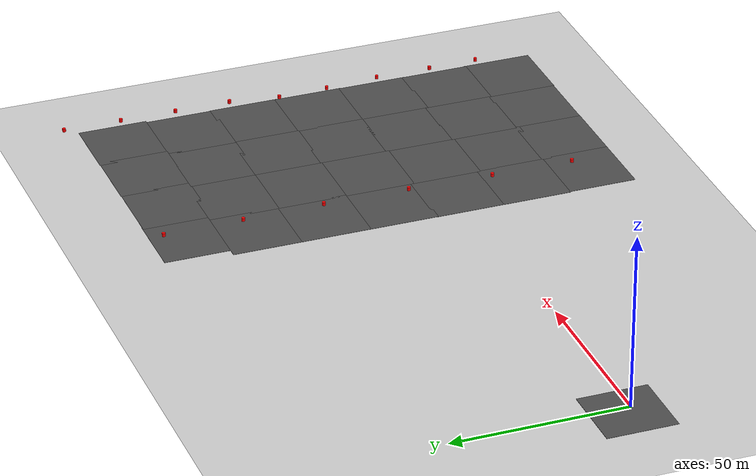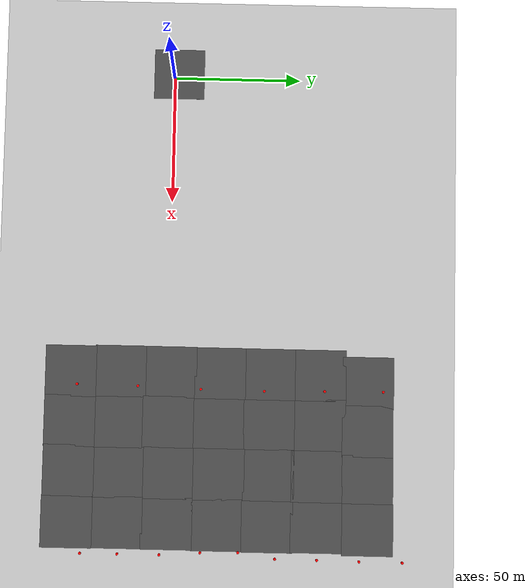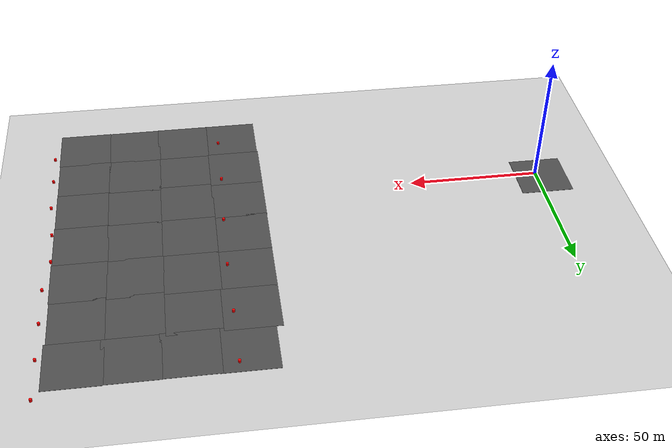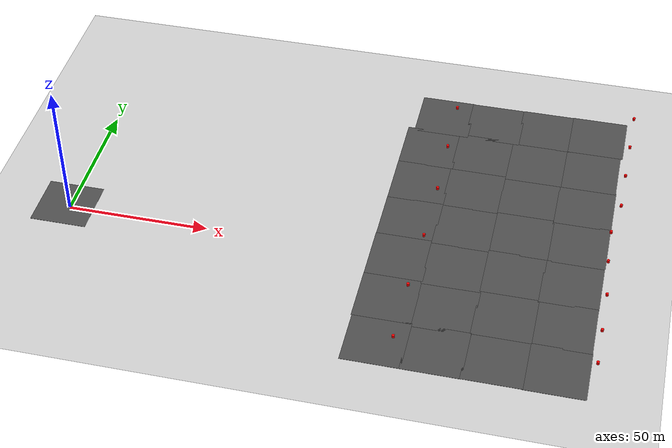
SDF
<sdf version="1.6">
 <world name="default">
  <model name="ground_plane">
   <static>1</static>
   <link name="link">
    <collision name="collision">
     <geometry><plane><normal>0 0 1</normal><size>100 100</size></plane></geometry>
     <surface>
      <contact><collide_bitmask>65535</collide_bitmask></contact>
      <friction><ode><mu>100</mu><mu2>50</mu2></ode></friction>
     </surface>
    </collision>
    <visual name="visual">
     <cast_shadows>0</cast_shadows>
     <geometry><plane><normal>0 0 1</normal><size>100 100</size></plane></geometry>
     <material>
      <script><uri>file://media/materials/scripts/gazebo.material</uri><name>Gazebo/Grey</name></script>
     </material>
    </visual>
   </link>
  </model>
  <model name="asphalt_plane">
   <static>1</static>
   <link name="link">
    <collision name="collision"><geometry><box><size>20 20 0.1</size></box></geometry></collision>
    <visual name="visual">
     <cast_shadows>0</cast_shadows>
     <geometry><box><size>20 20 0.1</size></box></geometry>
     <material>
      <script>
       <uri>model://asphalt_plane/materials/scripts</uri>
       <uri>model://asphalt_plane/materials/textures</uri>
       <name>vrc/asphalt</name>
      </script>
     </material>
    </visual>
   </link>
   <pose>-1.68563 1.69754 0 0 -0 0</pose>
  </model>
  <model name="asphalt_plane_47">
   <static>1</static>
   <link name="link">
    <collision name="collision"><geometry><box><size>20 20 0.1</size></box></geometry></collision>
    <visual name="visual">
     <cast_shadows>0</cast_shadows>
     <geometry><box><size>20 20 0.1</size></box></geometry>
     <material>
      <script>
       <uri>model://asphalt_plane/materials/scripts</uri>
       <uri>model://asphalt_plane/materials/textures</uri>
       <name>vrc/asphalt</name>
      </script>
     </material>
    </visual>
   </link>
   <pose>117.725 -38.1173 0 0 -0 0</pose>
  </model>
  <model name="asphalt_plane_48">
   <static>1</static>
   <link name="link">
    <collision name="collision"><geometry><box><size>20 20 0.1</size></box></geometry></collision>
    <visual name="visual">
     <cast_shadows>0</cast_shadows>
     <geometry><box><size>20 20 0.1</size></box></geometry>
     <material>
      <script>
       <uri>model://asphalt_plane/materials/scripts</uri>
       <uri>model://asphalt_plane/materials/textures</uri>
       <name>vrc/asphalt</name>
      </script>
     </material>
    </visual>
   </link>
   <pose>117.418 -18.5588 0 0 -0 0</pose>
  </model>
  <model name="asphalt_plane_49">
   <static>1</static>
   <link name="link">
    <collision name="collision"><geometry><box><size>20 20 0.1</size></box></geometry></collision>
    <visual name="visual">
     <cast_shadows>0</cast_shadows>
     <geometry><box><size>20 20 0.1</size></box></geometry>
     <material>
      <script>
       <uri>model://asphalt_plane/materials/scripts</uri>
       <uri>model://asphalt_plane/materials/textures</uri>
       <name>vrc/asphalt</name>
      </script>
     </material>
    </visual>
   </link>
   <pose>117.461 1.3262 0 0 -0 0</pose>
  </model>
  <model name="asphalt_plane_50">
   <static>1</static>
   <link name="link">
    <collision name="collision"><geometry><box><size>20 20 0.1</size></box></geometry></collision>
    <visual name="visual">
     <cast_shadows>0</cast_shadows>
     <geometry><box><size>20 20 0.1</size></box></geometry>
     <material>
      <script>
       <uri>model://asphalt_plane/materials/scripts</uri>
       <uri>model://asphalt_plane/materials/textures</uri>
       <name>vrc/asphalt</name>
      </script>
     </material>
    </visual>
   </link>
   <pose>117.561 20.5883 0 0 -0 0</pose>
  </model>
  <model name="asphalt_plane_51">
   <static>1</static>
   <link name="link">
    <collision name="collision"><geometry><box><size>20 20 0.1</size></box></geometry></collision>
    <visual name="visual">
     <cast_shadows>0</cast_shadows>
     <geometry><box><size>20 20 0.1</size></box></geometry>
     <material>
      <script>
       <uri>model://asphalt_plane/materials/scripts</uri>
       <uri>model://asphalt_plane/materials/textures</uri>
       <name>vrc/asphalt</name>
      </script>
     </material>
    </visual>
   </link>
   <pose>117.597 40.3072 0 0 -0 0</pose>
  </model>
  <model name="asphalt_plane_52">
   <static>1</static>
   <link name="link">
    <collision name="collision"><geometry><box><size>20 20 0.1</size></box></geometry></collision>
    <visual name="visual">
     <cast_shadows>0</cast_shadows>
     <geometry><box><size>20 20 0.1</size></box></geometry>
     <material>
      <script>
       <uri>model://asphalt_plane/materials/scripts</uri>
       <uri>model://asphalt_plane/materials/textures</uri>
       <name>vrc/asphalt</name>
      </script>
     </material>
    </visual>
   </link>
   <pose>117.611 60.0083 0 0 -0 0</pose>
  </model>
  <model name="asphalt_plane_53">
   <static>1</static>
   <link name="link">
    <collision name="collision"><geometry><box><size>20 20 0.1</size></box></geometry></collision>
    <visual name="visual">
     <cast_shadows>0</cast_shadows>
     <geometry><box><size>20 20 0.1</size></box></geometry>
     <material>
      <script>
       <uri>model://asphalt_plane/materials/scripts</uri>
       <uri>model://asphalt_plane/materials/textures</uri>
       <name>vrc/asphalt</name>
      </script>
     </material>
    </visual>
   </link>
   <pose>136.964 59.9939 0 0 -0 0</pose>
  </model>
  <model name="asphalt_plane_54">
   <static>1</static>
   <link name="link">
    <collision name="collision"><geometry><box><size>20 20 0.1</size></box></geometry></collision>
    <visual name="visual">
     <cast_shadows>0</cast_shadows>
     <geometry><box><size>20 20 0.1</size></box></geometry>
     <material>
      <script>
       <uri>model://asphalt_plane/materials/scripts</uri>
       <uri>model://asphalt_plane/materials/textures</uri>
       <name>vrc/asphalt</name>
      </script>
     </material>
    </visual>
   </link>
   <pose>136.97 40.0461 0 0 -0 0</pose>
  </model>
  <model name="asphalt_plane_55">
   <static>1</static>
   <link name="link">
    <collision name="collision"><geometry><box><size>20 20 0.1</size></box></geometry></collision>
    <visual name="visual">
     <cast_shadows>0</cast_shadows>
     <geometry><box><size>20 20 0.1</size></box></geometry>
     <material>
      <script>
       <uri>model://asphalt_plane/materials/scripts</uri>
       <uri>model://asphalt_plane/materials/textures</uri>
       <name>vrc/asphalt</name>
      </script>
     </material>
    </visual>
   </link>
   <pose>136.974 20.2339 0 0 -0 0</pose>
  </model>
  <model name="asphalt_plane_56">
   <static>1</static>
   <link name="link">
    <collision name="collision"><geometry><box><size>20 20 0.1</size></box></geometry></collision>
    <visual name="visual">
     <cast_shadows>0</cast_shadows>
     <geometry><box><size>20 20 0.1</size></box></geometry>
     <material>
      <script>
       <uri>model://asphalt_plane/materials/scripts</uri>
       <uri>model://asphalt_plane/materials/textures</uri>
       <name>vrc/asphalt</name>
      </script>
     </material>
    </visual>
   </link>
   <pose>136.959 0.447684 0 0 -0 0</pose>
  </model>
  <model name="asphalt_plane_57">
   <static>1</static>
   <link name="link">
    <collision name="collision"><geometry><box><size>20 20 0.1</size></box></geometry></collision>
    <visual name="visual">
     <cast_shadows>0</cast_shadows>
     <geometry><box><size>20 20 0.1</size></box></geometry>
     <material>
      <script>
       <uri>model://asphalt_plane/materials/scripts</uri>
       <uri>model://asphalt_plane/materials/textures</uri>
       <name>vrc/asphalt</name>
      </script>
     </material>
    </visual>
   </link>
   <pose>137.26 -19.4886 0 0 -0 0</pose>
  </model>
  <model name="asphalt_plane_58">
   <static>1</static>
   <link name="link">
    <collision name="collision"><geometry><box><size>20 20 0.1</size></box></geometry></collision>
    <visual name="visual">
     <cast_shadows>0</cast_shadows>
     <geometry><box><size>20 20 0.1</size></box></geometry>
     <material>
      <script>
       <uri>model://asphalt_plane/materials/scripts</uri>
       <uri>model://asphalt_plane/materials/textures</uri>
       <name>vrc/asphalt</name>
      </script>
     </material>
    </visual>
   </link>
   <pose>137.149 -38.126 0 0 -0 0</pose>
  </model>
  <model name="asphalt_plane_59">
   <static>1</static>
   <link name="link">
    <collision name="collision"><geometry><box><size>20 20 0.1</size></box></geometry></collision>
    <visual name="visual">
     <cast_shadows>0</cast_shadows>
     <geometry><box><size>20 20 0.1</size></box></geometry>
     <material>
      <script>
       <uri>model://asphalt_plane/materials/scripts</uri>
       <uri>model://asphalt_plane/materials/textures</uri>
       <name>vrc/asphalt</name>
      </script>
     </material>
    </visual>
   </link>
   <pose>156.487 -38.0347 0 0 -0 0</pose>
  </model>
  <model name="asphalt_plane_60">
   <static>1</static>
   <link name="link">
    <collision name="collision"><geometry><box><size>20 20 0.1</size></box></geometry></collision>
    <visual name="visual">
     <cast_shadows>0</cast_shadows>
     <geometry><box><size>20 20 0.1</size></box></geometry>
     <material>
      <script>
       <uri>model://asphalt_plane/materials/scripts</uri>
       <uri>model://asphalt_plane/materials/textures</uri>
       <name>vrc/asphalt</name>
      </script>
     </material>
    </visual>
   </link>
   <pose>156.663 -18.4522 0 0 -0 0</pose>
  </model>
  <model name="asphalt_plane_61">
   <static>1</static>
   <link name="link">
    <collision name="collision"><geometry><box><size>20 20 0.1</size></box></geometry></collision>
    <visual name="visual">
     <cast_shadows>0</cast_shadows>
     <geometry><box><size>20 20 0.1</size></box></geometry>
     <material>
      <script>
       <uri>model://asphalt_plane/materials/scripts</uri>
       <uri>model://asphalt_plane/materials/textures</uri>
       <name>vrc/asphalt</name>
      </script>
     </material>
    </visual>
   </link>
   <pose>156.766 1.17903 0 0 -0 0</pose>
  </model>
  <model name="asphalt_plane_62">
   <static>1</static>
   <link name="link">
    <collision name="collision"><geometry><box><size>20 20 0.1</size></box></geometry></collision>
    <visual name="visual">
     <cast_shadows>0</cast_shadows>
     <geometry><box><size>20 20 0.1</size></box></geometry>
     <material>
      <script>
       <uri>model://asphalt_plane/materials/scripts</uri>
       <uri>model://asphalt_plane/materials/textures</uri>
       <name>vrc/asphalt</name>
      </script>
     </material>
    </visual>
   </link>
   <pose>156.898 20.6474 0 0 -0 0</pose>
  </model>
  <model name="asphalt_plane_63">
   <static>1</static>
   <link name="link">
    <collision name="collision"><geometry><box><size>20 20 0.1</size></box></geometry></collision>
    <visual name="visual">
     <cast_shadows>0</cast_shadows>
     <geometry><box><size>20 20 0.1</size></box></geometry>
     <material>
      <script>
       <uri>model://asphalt_plane/materials/scripts</uri>
       <uri>model://asphalt_plane/materials/textures</uri>
       <name>vrc/asphalt</name>
      </script>
     </material>
    </visual>
   </link>
   <pose>156.775 40.0286 0 0 -0 0</pose>
  </model>
  <model name="asphalt_plane_64">
   <static>1</static>
   <link name="link">
    <collision name="collision"><geometry><box><size>20 20 0.1</size></box></geometry></collision>
    <visual name="visual">
     <cast_shadows>0</cast_shadows>
     <geometry><box><size>20 20 0.1</size></box></geometry>
     <material>
      <script>
       <uri>model://asphalt_plane/materials/scripts</uri>
       <uri>model://asphalt_plane/materials/textures</uri>
       <name>vrc/asphalt</name>
      </script>
     </material>
    </visual>
   </link>
   <pose>156.941 58.8997 0 0 -0 0</pose>
  </model>
  <model name="asphalt_plane_65">
   <static>1</static>
   <link name="link">
    <collision name="collision"><geometry><box><size>20 20 0.1</size></box></geometry></collision>
    <visual name="visual">
     <cast_shadows>0</cast_shadows>
     <geometry><box><size>20 20 0.1</size></box></geometry>
     <material>
      <script>
       <uri>model://asphalt_plane/materials/scripts</uri>
       <uri>model://asphalt_plane/materials/textures</uri>
       <name>vrc/asphalt</name>
      </script>
     </material>
    </visual>
   </link>
   <pose>176.35 -38.1595 0 0 -0 0</pose>
  </model>
  <model name="asphalt_plane_66">
   <static>1</static>
   <link name="link">
    <collision name="collision"><geometry><box><size>20 20 0.1</size></box></geometry></collision>
    <visual name="visual">
     <cast_shadows>0</cast_shadows>
     <geometry><box><size>20 20 0.1</size></box></geometry>
     <material>
      <script>
       <uri>model://asphalt_plane/materials/scripts</uri>
       <uri>model://asphalt_plane/materials/textures</uri>
       <name>vrc/asphalt</name>
      </script>
     </material>
    </visual>
   </link>
   <pose>176.208 -18.6943 0 0 -0 0</pose>
  </model>
  <model name="asphalt_plane_67">
   <static>1</static>
   <link name="link">
    <collision name="collision"><geometry><box><size>20 20 0.1</size></box></geometry></collision>
    <visual name="visual">
     <cast_shadows>0</cast_shadows>
     <geometry><box><size>20 20 0.1</size></box></geometry>
     <material>
      <script>
       <uri>model://asphalt_plane/materials/scripts</uri>
       <uri>model://asphalt_plane/materials/textures</uri>
       <name>vrc/asphalt</name>
      </script>
     </material>
    </visual>
   </link>
   <pose>176.281 0.711573 0 0 -0 0</pose>
  </model>
  <model name="asphalt_plane_68">
   <static>1</static>
   <link name="link">
    <collision name="collision"><geometry><box><size>20 20 0.1</size></box></geometry></collision>
    <visual name="visual">
     <cast_shadows>0</cast_shadows>
     <geometry><box><size>20 20 0.1</size></box></geometry>
     <material>
      <script>
       <uri>model://asphalt_plane/materials/scripts</uri>
       <uri>model://asphalt_plane/materials/textures</uri>
       <name>vrc/asphalt</name>
      </script>
     </material>
    </visual>
   </link>
   <pose>176.432 20.2894 0 0 -0 0</pose>
  </model>
  <model name="asphalt_plane_69">
   <static>1</static>
   <link name="link">
    <collision name="collision"><geometry><box><size>20 20 0.1</size></box></geometry></collision>
    <visual name="visual">
     <cast_shadows>0</cast_shadows>
     <geometry><box><size>20 20 0.1</size></box></geometry>
     <material>
      <script>
       <uri>model://asphalt_plane/materials/scripts</uri>
       <uri>model://asphalt_plane/materials/textures</uri>
       <name>vrc/asphalt</name>
      </script>
     </material>
    </visual>
   </link>
   <pose>176.575 39.843 0 0 -0 0</pose>
  </model>
  <model name="asphalt_plane_70">
   <static>1</static>
   <link name="link">
    <collision name="collision"><geometry><box><size>20 20 0.1</size></box></geometry></collision>
    <visual name="visual">
     <cast_shadows>0</cast_shadows>
     <geometry><box><size>20 20 0.1</size></box></geometry>
     <material>
      <script>
       <uri>model://asphalt_plane/materials/scripts</uri>
       <uri>model://asphalt_plane/materials/textures</uri>
       <name>vrc/asphalt</name>
      </script>
     </material>
    </visual>
   </link>
   <pose>176.383 58.9088 0 0 -0 0</pose>
  </model>
  <model name="asphalt_plane_78">
   <static>1</static>
   <link name="link">
    <collision name="collision"><geometry><box><size>20 20 0.1</size></box></geometry></collision>
    <visual name="visual">
     <cast_shadows>0</cast_shadows>
     <geometry><box><size>20 20 0.1</size></box></geometry>
     <material>
      <script>
       <uri>model://asphalt_plane/materials/scripts</uri>
       <uri>model://asphalt_plane/materials/textures</uri>
       <name>vrc/asphalt</name>
      </script>
     </material>
    </visual>
   </link>
   <pose>177.069 78.9065 0 0 -0 0</pose>
  </model>
  <model name="asphalt_plane_79">
   <static>1</static>
   <link name="link">
    <collision name="collision"><geometry><box><size>20 20 0.1</size></box></geometry></collision>
    <visual name="visual">
     <cast_shadows>0</cast_shadows>
     <geometry><box><size>20 20 0.1</size></box></geometry>
     <material>
      <script>
       <uri>model://asphalt_plane/materials/scripts</uri>
       <uri>model://asphalt_plane/materials/textures</uri>
       <name>vrc/asphalt</name>
      </script>
     </material>
    </visual>
   </link>
   <pose>158.334 78.7447 0 0 -0 0</pose>
  </model>
  <model name="asphalt_plane_80">
   <static>1</static>
   <link name="link">
    <collision name="collision"><geometry><box><size>20 20 0.1</size></box></geometry></collision>
    <visual name="visual">
     <cast_shadows>0</cast_shadows>
     <geometry><box><size>20 20 0.1</size></box></geometry>
     <material>
      <script>
       <uri>model://asphalt_plane/materials/scripts</uri>
       <uri>model://asphalt_plane/materials/textures</uri>
       <name>vrc/asphalt</name>
      </script>
     </material>
    </visual>
   </link>
   <pose>139.042 78.6211 0 0 -0 0</pose>
  </model>
  <model name="asphalt_plane_81">
   <static>1</static>
   <link name="link">
    <collision name="collision"><geometry><box><size>20 20 0.1</size></box></geometry></collision>
    <visual name="visual">
     <cast_shadows>0</cast_shadows>
     <geometry><box><size>20 20 0.1</size></box></geometry>
     <material>
      <script>
       <uri>model://asphalt_plane/materials/scripts</uri>
       <uri>model://asphalt_plane/materials/textures</uri>
       <name>vrc/asphalt</name>
      </script>
     </material>
    </visual>
   </link>
   <pose>120.04 78.7653 0 0 -0 0</pose>
  </model>
  <model name="station_38">
   <link name="link">
    <inertial>
     <mass>1</mass>
     <inertia><ixx>0.145833</ixx><ixy>0</ixy><ixz>0</ixz><iyy>0.145833</iyy><iyz>0</iyz><izz>0.125</izz></inertia>
    </inertial>
    <visual name="visual">
     <geometry><cylinder><radius>0.5</radius><length>1</length></cylinder></geometry>
     <material>
      <script><name>Gazebo/Grey</name><uri>file://media/materials/scripts/gazebo.material</uri></script>
      <shader type="vertex"><normal_map>__default__</normal_map></shader>
      <ambient>1 0 0 0</ambient>
      <diffuse>0 0 0 1</diffuse>
      <specular>0.91 0.01 0.01 1</specular>
      <emissive>0 0 0 1</emissive>
     </material>
    </visual>
    <collision name="collision">
     <geometry><cylinder><radius>0.5</radius><length>1</length></cylinder></geometry>
     <surface>
      <friction>
       <ode><mu>1</mu><mu2>1</mu2><fdir1>0 0 0</fdir1><slip1>0</slip1><slip2>0</slip2></ode>
       <torsional>
        <coefficient>1</coefficient>
        <patch_radius>0</patch_radius>
        <surface_radius>0</surface_radius>
        <use_patch_radius>1</use_patch_radius>
        <ode><slip>0</slip></ode>
       </torsional>
      </friction>
      <bounce><restitution_coefficient>0</restitution_coefficient><threshold>1e+06</threshold></bounce>
      <contact>
       <collide_without_contact>0</collide_without_contact>
       <collide_without_contact_bitmask>1</collide_without_contact_bitmask>
       <collide_bitmask>1</collide_bitmask>
       <ode>
        <soft_cfm>0</soft_cfm>
        <soft_erp>0.2</soft_erp>
        <kp>1e+13</kp>
        <kd>1</kd>
        <max_vel>0.01</max_vel>
        <min_depth>0</min_depth>
       </ode>
       <bullet>
        <split_impulse>1</split_impulse>
        <split_impulse_penetration_threshold>-0.01</split_impulse_penetration_threshold>
        <soft_cfm>0</soft_cfm>
        <soft_erp>0.2</soft_erp>
        <kp>1e+13</kp>
        <kd>1</kd>
       </bullet>
      </contact>
     </surface>
    </collision>
   </link>
   <static>1</static>
   <pose>189.238 92.5139 0.619557 0 -0 0</pose>
  </model>
  <model name="station_39">
   <link name="link">
    <inertial>
     <mass>1</mass>
     <inertia><ixx>0.145833</ixx><ixy>0</ixy><ixz>0</ixz><iyy>0.145833</iyy><iyz>0</iyz><izz>0.125</izz></inertia>
    </inertial>
    <visual name="visual">
     <geometry><cylinder><radius>0.5</radius><length>1</length></cylinder></geometry>
     <material>
      <script><name>Gazebo/Grey</name><uri>file://media/materials/scripts/gazebo.material</uri></script>
      <shader type="vertex"><normal_map>__default__</normal_map></shader>
      <ambient>1 0 0 0</ambient>
      <diffuse>0 0 0 1</diffuse>
      <specular>0.91 0.01 0.01 1</specular>
      <emissive>0 0 0 1</emissive>
     </material>
    </visual>
    <collision name="collision">
     <geometry><cylinder><radius>0.5</radius><length>1</length></cylinder></geometry>
     <surface>
      <friction>
       <ode><mu>1</mu><mu2>1</mu2><fdir1>0 0 0</fdir1><slip1>0</slip1><slip2>0</slip2></ode>
       <torsional>
        <coefficient>1</coefficient>
        <patch_radius>0</patch_radius>
        <surface_radius>0</surface_radius>
        <use_patch_radius>1</use_patch_radius>
        <ode><slip>0</slip></ode>
       </torsional>
      </friction>
      <bounce><restitution_coefficient>0</restitution_coefficient><threshold>1e+06</threshold></bounce>
      <contact>
       <collide_without_contact>0</collide_without_contact>
       <collide_without_contact_bitmask>1</collide_without_contact_bitmask>
       <collide_bitmask>1</collide_bitmask>
       <ode>
        <soft_cfm>0</soft_cfm>
        <soft_erp>0.2</soft_erp>
        <kp>1e+13</kp>
        <kd>1</kd>
        <max_vel>0.01</max_vel>
        <min_depth>0</min_depth>
       </ode>
       <bullet>
        <split_impulse>1</split_impulse>
        <split_impulse_penetration_threshold>-0.01</split_impulse_penetration_threshold>
        <soft_cfm>0</soft_cfm>
        <soft_erp>0.2</soft_erp>
        <kp>1e+13</kp>
        <kd>1</kd>
       </bullet>
      </contact>
     </surface>
    </collision>
   </link>
   <static>1</static>
   <pose>189.119 75.7174 0.619557 0 -0 0</pose>
  </model>
  <model name="station_40">
   <link name="link">
    <inertial>
     <mass>1</mass>
     <inertia><ixx>0.145833</ixx><ixy>0</ixy><ixz>0</ixz><iyy>0.145833</iyy><iyz>0</iyz><izz>0.125</izz></inertia>
    </inertial>
    <visual name="visual">
     <geometry><cylinder><radius>0.5</radius><length>1</length></cylinder></geometry>
     <material>
      <script><name>Gazebo/Grey</name><uri>file://media/materials/scripts/gazebo.material</uri></script>
      <shader type="vertex"><normal_map>__default__</normal_map></shader>
      <ambient>1 0 0 0</ambient>
      <diffuse>0 0 0 1</diffuse>
      <specular>0.91 0.01 0.01 1</specular>
      <emissive>0 0 0 1</emissive>
     </material>
    </visual>
    <collision name="collision">
     <geometry><cylinder><radius>0.5</radius><length>1</length></cylinder></geometry>
     <surface>
      <friction>
       <ode><mu>1</mu><mu2>1</mu2><fdir1>0 0 0</fdir1><slip1>0</slip1><slip2>0</slip2></ode>
       <torsional>
        <coefficient>1</coefficient>
        <patch_radius>0</patch_radius>
        <surface_radius>0</surface_radius>
        <use_patch_radius>1</use_patch_radius>
        <ode><slip>0</slip></ode>
       </torsional>
      </friction>
      <bounce><restitution_coefficient>0</restitution_coefficient><threshold>1e+06</threshold></bounce>
      <contact>
       <collide_without_contact>0</collide_without_contact>
       <collide_without_contact_bitmask>1</collide_without_contact_bitmask>
       <collide_bitmask>1</collide_bitmask>
       <ode>
        <soft_cfm>0</soft_cfm>
        <soft_erp>0.2</soft_erp>
        <kp>1e+13</kp>
        <kd>1</kd>
        <max_vel>0.01</max_vel>
        <min_depth>0</min_depth>
       </ode>
       <bullet>
        <split_impulse>1</split_impulse>
        <split_impulse_penetration_threshold>-0.01</split_impulse_penetration_threshold>
        <soft_cfm>0</soft_cfm>
        <soft_erp>0.2</soft_erp>
        <kp>1e+13</kp>
        <kd>1</kd>
       </bullet>
      </contact>
     </surface>
    </collision>
   </link>
   <static>1</static>
   <pose>188.919 59.3944 0.619557 0 -0 0</pose>
  </model>
  <model name="station_41">
   <link name="link">
    <inertial>
     <mass>1</mass>
     <inertia><ixx>0.145833</ixx><ixy>0</ixy><ixz>0</ixz><iyy>0.145833</iyy><iyz>0</iyz><izz>0.125</izz></inertia>
    </inertial>
    <visual name="visual">
     <geometry><cylinder><radius>0.5</radius><length>1</length></cylinder></geometry>
     <material>
      <script><name>Gazebo/Grey</name><uri>file://media/materials/scripts/gazebo.material</uri></script>
      <shader type="vertex"><normal_map>__default__</normal_map></shader>
      <ambient>1 0 0 0</ambient>
      <diffuse>0 0 0 1</diffuse>
      <specular>0.91 0.01 0.01 1</specular>
      <emissive>0 0 0 1</emissive>
     </material>
    </visual>
    <collision name="collision">
     <geometry><cylinder><radius>0.5</radius><length>1</length></cylinder></geometry>
     <surface>
      <friction>
       <ode><mu>1</mu><mu2>1</mu2><fdir1>0 0 0</fdir1><slip1>0</slip1><slip2>0</slip2></ode>
       <torsional>
        <coefficient>1</coefficient>
        <patch_radius>0</patch_radius>
        <surface_radius>0</surface_radius>
        <use_patch_radius>1</use_patch_radius>
        <ode><slip>0</slip></ode>
       </torsional>
      </friction>
      <bounce><restitution_coefficient>0</restitution_coefficient><threshold>1e+06</threshold></bounce>
      <contact>
       <collide_without_contact>0</collide_without_contact>
       <collide_without_contact_bitmask>1</collide_without_contact_bitmask>
       <collide_bitmask>1</collide_bitmask>
       <ode>
        <soft_cfm>0</soft_cfm>
        <soft_erp>0.2</soft_erp>
        <kp>1e+13</kp>
        <kd>1</kd>
        <max_vel>0.01</max_vel>
        <min_depth>0</min_depth>
       </ode>
       <bullet>
        <split_impulse>1</split_impulse>
        <split_impulse_penetration_threshold>-0.01</split_impulse_penetration_threshold>
        <soft_cfm>0</soft_cfm>
        <soft_erp>0.2</soft_erp>
        <kp>1e+13</kp>
        <kd>1</kd>
       </bullet>
      </contact>
     </surface>
    </collision>
   </link>
   <static>1</static>
   <pose>188.855 43.1331 0.619557 0 -0 0</pose>
  </model>
  <model name="station_42">
   <link name="link">
    <inertial>
     <mass>1</mass>
     <inertia><ixx>0.145833</ixx><ixy>0</ixy><ixz>0</ixz><iyy>0.145833</iyy><iyz>0</iyz><izz>0.125</izz></inertia>
    </inertial>
    <visual name="visual">
     <geometry><cylinder><radius>0.5</radius><length>1</length></cylinder></geometry>
     <material>
      <script><name>Gazebo/Grey</name><uri>file://media/materials/scripts/gazebo.material</uri></script>
      <shader type="vertex"><normal_map>__default__</normal_map></shader>
      <ambient>1 0 0 0</ambient>
      <diffuse>0 0 0 1</diffuse>
      <specular>0.91 0.01 0.01 1</specular>
      <emissive>0 0 0 1</emissive>
     </material>
    </visual>
    <collision name="collision">
     <geometry><cylinder><radius>0.5</radius><length>1</length></cylinder></geometry>
     <surface>
      <friction>
       <ode><mu>1</mu><mu2>1</mu2><fdir1>0 0 0</fdir1><slip1>0</slip1><slip2>0</slip2></ode>
       <torsional>
        <coefficient>1</coefficient>
        <patch_radius>0</patch_radius>
        <surface_radius>0</surface_radius>
        <use_patch_radius>1</use_patch_radius>
        <ode><slip>0</slip></ode>
       </torsional>
      </friction>
      <bounce><restitution_coefficient>0</restitution_coefficient><threshold>1e+06</threshold></bounce>
      <contact>
       <collide_without_contact>0</collide_without_contact>
       <collide_without_contact_bitmask>1</collide_without_contact_bitmask>
       <collide_bitmask>1</collide_bitmask>
       <ode>
        <soft_cfm>0</soft_cfm>
        <soft_erp>0.2</soft_erp>
        <kp>1e+13</kp>
        <kd>1</kd>
        <max_vel>0.01</max_vel>
        <min_depth>0</min_depth>
       </ode>
       <bullet>
        <split_impulse>1</split_impulse>
        <split_impulse_penetration_threshold>-0.01</split_impulse_penetration_threshold>
        <soft_cfm>0</soft_cfm>
        <soft_erp>0.2</soft_erp>
        <kp>1e+13</kp>
        <kd>1</kd>
       </bullet>
      </contact>
     </surface>
    </collision>
   </link>
   <static>1</static>
   <pose>186.632 28.8057 0.619557 0 -0 0</pose>
  </model>
  <model name="station_43">
   <link name="link">
    <inertial>
     <mass>1</mass>
     <inertia><ixx>0.145833</ixx><ixy>0</ixy><ixz>0</ixz><iyy>0.145833</iyy><iyz>0</iyz><izz>0.125</izz></inertia>
    </inertial>
    <visual name="visual">
     <geometry><cylinder><radius>0.5</radius><length>1</length></cylinder></geometry>
     <material>
      <script><name>Gazebo/Grey</name><uri>file://media/materials/scripts/gazebo.material</uri></script>
      <shader type="vertex"><normal_map>__default__</normal_map></shader>
      <ambient>1 0 0 0</ambient>
      <diffuse>0 0 0 1</diffuse>
      <specular>0.91 0.01 0.01 1</specular>
      <emissive>0 0 0 1</emissive>
     </material>
    </visual>
    <collision name="collision">
     <geometry><cylinder><radius>0.5</radius><length>1</length></cylinder></geometry>
     <surface>
      <friction>
       <ode><mu>1</mu><mu2>1</mu2><fdir1>0 0 0</fdir1><slip1>0</slip1><slip2>0</slip2></ode>
       <torsional>
        <coefficient>1</coefficient>
        <patch_radius>0</patch_radius>
        <surface_radius>0</surface_radius>
        <use_patch_radius>1</use_patch_radius>
        <ode><slip>0</slip></ode>
       </torsional>
      </friction>
      <bounce><restitution_coefficient>0</restitution_coefficient><threshold>1e+06</threshold></bounce>
      <contact>
       <collide_without_contact>0</collide_without_contact>
       <collide_without_contact_bitmask>1</collide_without_contact_bitmask>
       <collide_bitmask>1</collide_bitmask>
       <ode>
        <soft_cfm>0</soft_cfm>
        <soft_erp>0.2</soft_erp>
        <kp>1e+13</kp>
        <kd>1</kd>
        <max_vel>0.01</max_vel>
        <min_depth>0</min_depth>
       </ode>
       <bullet>
        <split_impulse>1</split_impulse>
        <split_impulse_penetration_threshold>-0.01</split_impulse_penetration_threshold>
        <soft_cfm>0</soft_cfm>
        <soft_erp>0.2</soft_erp>
        <kp>1e+13</kp>
        <kd>1</kd>
       </bullet>
      </contact>
     </surface>
    </collision>
   </link>
   <static>1</static>
   <pose>187.024 14.1659 0.619557 0 -0 0</pose>
  </model>
  <model name="station_44">
   <link name="link">
    <inertial>
     <mass>1</mass>
     <inertia><ixx>0.145833</ixx><ixy>0</ixy><ixz>0</ixz><iyy>0.145833</iyy><iyz>0</iyz><izz>0.125</izz></inertia>
    </inertial>
    <visual name="visual">
     <geometry><cylinder><radius>0.5</radius><length>1</length></cylinder></geometry>
     <material>
      <script><name>Gazebo/Grey</name><uri>file://media/materials/scripts/gazebo.material</uri></script>
      <shader type="vertex"><normal_map>__default__</normal_map></shader>
      <ambient>1 0 0 0</ambient>
      <diffuse>0 0 0 1</diffuse>
      <specular>0.91 0.01 0.01 1</specular>
      <emissive>0 0 0 1</emissive>
     </material>
    </visual>
    <collision name="collision">
     <geometry><cylinder><radius>0.5</radius><length>1</length></cylinder></geometry>
     <surface>
      <friction>
       <ode><mu>1</mu><mu2>1</mu2><fdir1>0 0 0</fdir1><slip1>0</slip1><slip2>0</slip2></ode>
       <torsional>
        <coefficient>1</coefficient>
        <patch_radius>0</patch_radius>
        <surface_radius>0</surface_radius>
        <use_patch_radius>1</use_patch_radius>
        <ode><slip>0</slip></ode>
       </torsional>
      </friction>
      <bounce><restitution_coefficient>0</restitution_coefficient><threshold>1e+06</threshold></bounce>
      <contact>
       <collide_without_contact>0</collide_without_contact>
       <collide_without_contact_bitmask>1</collide_without_contact_bitmask>
       <collide_bitmask>1</collide_bitmask>
       <ode>
        <soft_cfm>0</soft_cfm>
        <soft_erp>0.2</soft_erp>
        <kp>1e+13</kp>
        <kd>1</kd>
        <max_vel>0.01</max_vel>
        <min_depth>0</min_depth>
       </ode>
       <bullet>
        <split_impulse>1</split_impulse>
        <split_impulse_penetration_threshold>-0.01</split_impulse_penetration_threshold>
        <soft_cfm>0</soft_cfm>
        <soft_erp>0.2</soft_erp>
        <kp>1e+13</kp>
        <kd>1</kd>
       </bullet>
      </contact>
     </surface>
    </collision>
   </link>
   <static>1</static>
   <pose>188.125 -1.63657 0.619557 0 -0 0</pose>
  </model>
  <model name="station_45">
   <link name="link">
    <inertial>
     <mass>1</mass>
     <inertia><ixx>0.145833</ixx><ixy>0</ixy><ixz>0</ixz><iyy>0.145833</iyy><iyz>0</iyz><izz>0.125</izz></inertia>
    </inertial>
    <visual name="visual">
     <geometry><cylinder><radius>0.5</radius><length>1</length></cylinder></geometry>
     <material>
      <script><name>Gazebo/Grey</name><uri>file://media/materials/scripts/gazebo.material</uri></script>
      <shader type="vertex"><normal_map>__default__</normal_map></shader>
      <ambient>1 0 0 0</ambient>
      <diffuse>0 0 0 1</diffuse>
      <specular>0.91 0.01 0.01 1</specular>
      <emissive>0 0 0 1</emissive>
     </material>
    </visual>
    <collision name="collision">
     <geometry><cylinder><radius>0.5</radius><length>1</length></cylinder></geometry>
     <surface>
      <friction>
       <ode><mu>1</mu><mu2>1</mu2><fdir1>0 0 0</fdir1><slip1>0</slip1><slip2>0</slip2></ode>
       <torsional>
        <coefficient>1</coefficient>
        <patch_radius>0</patch_radius>
        <surface_radius>0</surface_radius>
        <use_patch_radius>1</use_patch_radius>
        <ode><slip>0</slip></ode>
       </torsional>
      </friction>
      <bounce><restitution_coefficient>0</restitution_coefficient><threshold>1e+06</threshold></bounce>
      <contact>
       <collide_without_contact>0</collide_without_contact>
       <collide_without_contact_bitmask>1</collide_without_contact_bitmask>
       <collide_bitmask>1</collide_bitmask>
       <ode>
        <soft_cfm>0</soft_cfm>
        <soft_erp>0.2</soft_erp>
        <kp>1e+13</kp>
        <kd>1</kd>
        <max_vel>0.01</max_vel>
        <min_depth>0</min_depth>
       </ode>
       <bullet>
        <split_impulse>1</split_impulse>
        <split_impulse_penetration_threshold>-0.01</split_impulse_penetration_threshold>
        <soft_cfm>0</soft_cfm>
        <soft_erp>0.2</soft_erp>
        <kp>1e+13</kp>
        <kd>1</kd>
       </bullet>
      </contact>
     </surface>
    </collision>
   </link>
   <static>1</static>
   <pose>188.131 -17.9624 0.619557 0 -0 0</pose>
  </model>
  <model name="station_46">
   <link name="link">
    <inertial>
     <mass>1</mass>
     <inertia><ixx>0.145833</ixx><ixy>0</ixy><ixz>0</ixz><iyy>0.145833</iyy><iyz>0</iyz><izz>0.125</izz></inertia>
    </inertial>
    <visual name="visual">
     <geometry><cylinder><radius>0.5</radius><length>1</length></cylinder></geometry>
     <material>
      <script><name>Gazebo/Grey</name><uri>file://media/materials/scripts/gazebo.material</uri></script>
      <shader type="vertex"><normal_map>__default__</normal_map></shader>
      <ambient>1 0 0 0</ambient>
      <diffuse>0 0 0 1</diffuse>
      <specular>0.91 0.01 0.01 1</specular>
      <emissive>0 0 0 1</emissive>
     </material>
    </visual>
    <collision name="collision">
     <geometry><cylinder><radius>0.5</radius><length>1</length></cylinder></geometry>
     <surface>
      <friction>
       <ode><mu>1</mu><mu2>1</mu2><fdir1>0 0 0</fdir1><slip1>0</slip1><slip2>0</slip2></ode>
       <torsional>
        <coefficient>1</coefficient>
        <patch_radius>0</patch_radius>
        <surface_radius>0</surface_radius>
        <use_patch_radius>1</use_patch_radius>
        <ode><slip>0</slip></ode>
       </torsional>
      </friction>
      <bounce><restitution_coefficient>0</restitution_coefficient><threshold>1e+06</threshold></bounce>
      <contact>
       <collide_without_contact>0</collide_without_contact>
       <collide_without_contact_bitmask>1</collide_without_contact_bitmask>
       <collide_bitmask>1</collide_bitmask>
       <ode>
        <soft_cfm>0</soft_cfm>
        <soft_erp>0.2</soft_erp>
        <kp>1e+13</kp>
        <kd>1</kd>
        <max_vel>0.01</max_vel>
        <min_depth>0</min_depth>
       </ode>
       <bullet>
        <split_impulse>1</split_impulse>
        <split_impulse_penetration_threshold>-0.01</split_impulse_penetration_threshold>
        <soft_cfm>0</soft_cfm>
        <soft_erp>0.2</soft_erp>
        <kp>1e+13</kp>
        <kd>1</kd>
       </bullet>
      </contact>
     </surface>
    </collision>
   </link>
   <static>1</static>
   <pose>188.197 -32.3567 0.619557 0 -0 0</pose>
  </model>
  <model name="station_55">
   <link name="link">
    <inertial>
     <mass>1</mass>
     <inertia><ixx>0.145833</ixx><ixy>0</ixy><ixz>0</ixz><iyy>0.145833</iyy><iyz>0</iyz><izz>0.125</izz></inertia>
    </inertial>
    <visual name="visual">
     <geometry><cylinder><radius>0.5</radius><length>1</length></cylinder></geometry>
     <material>
      <script><name>Gazebo/Grey</name><uri>file://media/materials/scripts/gazebo.material</uri></script>
      <shader type="vertex"><normal_map>__default__</normal_map></shader>
      <ambient>1 0 0 0</ambient>
      <diffuse>0 0 0 1</diffuse>
      <specular>0.91 0.01 0.01 1</specular>
      <emissive>0 0 0 1</emissive>
     </material>
    </visual>
    <collision name="collision">
     <geometry><cylinder><radius>0.5</radius><length>1</length></cylinder></geometry>
     <surface>
      <friction>
       <ode><mu>1</mu><mu2>1</mu2><fdir1>0 0 0</fdir1><slip1>0</slip1><slip2>0</slip2></ode>
       <torsional>
        <coefficient>1</coefficient>
        <patch_radius>0</patch_radius>
        <surface_radius>0</surface_radius>
        <use_patch_radius>1</use_patch_radius>
        <ode><slip>0</slip></ode>
       </torsional>
      </friction>
      <bounce><restitution_coefficient>0</restitution_coefficient><threshold>1e+06</threshold></bounce>
      <contact>
       <collide_without_contact>0</collide_without_contact>
       <collide_without_contact_bitmask>1</collide_without_contact_bitmask>
       <collide_bitmask>1</collide_bitmask>
       <ode>
        <soft_cfm>0</soft_cfm>
        <soft_erp>0.2</soft_erp>
        <kp>1e+13</kp>
        <kd>1</kd>
        <max_vel>0.01</max_vel>
        <min_depth>0</min_depth>
       </ode>
       <bullet>
        <split_impulse>1</split_impulse>
        <split_impulse_penetration_threshold>-0.01</split_impulse_penetration_threshold>
        <soft_cfm>0</soft_cfm>
        <soft_erp>0.2</soft_erp>
        <kp>1e+13</kp>
        <kd>1</kd>
       </bullet>
      </contact>
     </surface>
    </collision>
   </link>
   <static>1</static>
   <pose>123.53 84.547 0.619557 0 -0 0</pose>
  </model>
  <model name="station_56">
   <link name="link">
    <inertial>
     <mass>1</mass>
     <inertia><ixx>0.145833</ixx><ixy>0</ixy><ixz>0</ixz><iyy>0.145833</iyy><iyz>0</iyz><izz>0.125</izz></inertia>
    </inertial>
    <visual name="visual">
     <geometry><cylinder><radius>0.5</radius><length>1</length></cylinder></geometry>
     <material>
      <script><name>Gazebo/Grey</name><uri>file://media/materials/scripts/gazebo.material</uri></script>
      <shader type="vertex"><normal_map>__default__</normal_map></shader>
      <ambient>1 0 0 0</ambient>
      <diffuse>0 0 0 1</diffuse>
      <specular>0.91 0.01 0.01 1</specular>
      <emissive>0 0 0 1</emissive>
     </material>
    </visual>
    <collision name="collision">
     <geometry><cylinder><radius>0.5</radius><length>1</length></cylinder></geometry>
     <surface>
      <friction>
       <ode><mu>1</mu><mu2>1</mu2><fdir1>0 0 0</fdir1><slip1>0</slip1><slip2>0</slip2></ode>
       <torsional>
        <coefficient>1</coefficient>
        <patch_radius>0</patch_radius>
        <surface_radius>0</surface_radius>
        <use_patch_radius>1</use_patch_radius>
        <ode><slip>0</slip></ode>
       </torsional>
      </friction>
      <bounce><restitution_coefficient>0</restitution_coefficient><threshold>1e+06</threshold></bounce>
      <contact>
       <collide_without_contact>0</collide_without_contact>
       <collide_without_contact_bitmask>1</collide_without_contact_bitmask>
       <collide_bitmask>1</collide_bitmask>
       <ode>
        <soft_cfm>0</soft_cfm>
        <soft_erp>0.2</soft_erp>
        <kp>1e+13</kp>
        <kd>1</kd>
        <max_vel>0.01</max_vel>
        <min_depth>0</min_depth>
       </ode>
       <bullet>
        <split_impulse>1</split_impulse>
        <split_impulse_penetration_threshold>-0.01</split_impulse_penetration_threshold>
        <soft_cfm>0</soft_cfm>
        <soft_erp>0.2</soft_erp>
        <kp>1e+13</kp>
        <kd>1</kd>
       </bullet>
      </contact>
     </surface>
    </collision>
   </link>
   <static>1</static>
   <pose>123.794 61.5855 0.619557 0 -0 0</pose>
  </model>
  <model name="station_57">
   <link name="link">
    <inertial>
     <mass>1</mass>
     <inertia><ixx>0.145833</ixx><ixy>0</ixy><ixz>0</ixz><iyy>0.145833</iyy><iyz>0</iyz><izz>0.125</izz></inertia>
    </inertial>
    <visual name="visual">
     <geometry><cylinder><radius>0.5</radius><length>1</length></cylinder></geometry>
     <material>
      <script><name>Gazebo/Grey</name><uri>file://media/materials/scripts/gazebo.material</uri></script>
      <shader type="vertex"><normal_map>__default__</normal_map></shader>
      <ambient>1 0 0 0</ambient>
      <diffuse>0 0 0 1</diffuse>
      <specular>0.91 0.01 0.01 1</specular>
      <emissive>0 0 0 1</emissive>
     </material>
    </visual>
    <collision name="collision">
     <geometry><cylinder><radius>0.5</radius><length>1</length></cylinder></geometry>
     <surface>
      <friction>
       <ode><mu>1</mu><mu2>1</mu2><fdir1>0 0 0</fdir1><slip1>0</slip1><slip2>0</slip2></ode>
       <torsional>
        <coefficient>1</coefficient>
        <patch_radius>0</patch_radius>
        <surface_radius>0</surface_radius>
        <use_patch_radius>1</use_patch_radius>
        <ode><slip>0</slip></ode>
       </torsional>
      </friction>
      <bounce><restitution_coefficient>0</restitution_coefficient><threshold>1e+06</threshold></bounce>
      <contact>
       <collide_without_contact>0</collide_without_contact>
       <collide_without_contact_bitmask>1</collide_without_contact_bitmask>
       <collide_bitmask>1</collide_bitmask>
       <ode>
        <soft_cfm>0</soft_cfm>
        <soft_erp>0.2</soft_erp>
        <kp>1e+13</kp>
        <kd>1</kd>
        <max_vel>0.01</max_vel>
        <min_depth>0</min_depth>
       </ode>
       <bullet>
        <split_impulse>1</split_impulse>
        <split_impulse_penetration_threshold>-0.01</split_impulse_penetration_threshold>
        <soft_cfm>0</soft_cfm>
        <soft_erp>0.2</soft_erp>
        <kp>1e+13</kp>
        <kd>1</kd>
       </bullet>
      </contact>
     </surface>
    </collision>
   </link>
   <static>1</static>
   <pose>124.248 37.9459 0.619557 0 -0 0</pose>
  </model>
  <model name="station_58">
   <link name="link">
    <inertial>
     <mass>1</mass>
     <inertia><ixx>0.145833</ixx><ixy>0</ixy><ixz>0</ixz><iyy>0.145833</iyy><iyz>0</iyz><izz>0.125</izz></inertia>
    </inertial>
    <visual name="visual">
     <geometry><cylinder><radius>0.5</radius><length>1</length></cylinder></geometry>
     <material>
      <script><name>Gazebo/Grey</name><uri>file://media/materials/scripts/gazebo.material</uri></script>
      <shader type="vertex"><normal_map>__default__</normal_map></shader>
      <ambient>1 0 0 0</ambient>
      <diffuse>0 0 0 1</diffuse>
      <specular>0.91 0.01 0.01 1</specular>
      <emissive>0 0 0 1</emissive>
     </material>
    </visual>
    <collision name="collision">
     <geometry><cylinder><radius>0.5</radius><length>1</length></cylinder></geometry>
     <surface>
      <friction>
       <ode><mu>1</mu><mu2>1</mu2><fdir1>0 0 0</fdir1><slip1>0</slip1><slip2>0</slip2></ode>
       <torsional>
        <coefficient>1</coefficient>
        <patch_radius>0</patch_radius>
        <surface_radius>0</surface_radius>
        <use_patch_radius>1</use_patch_radius>
        <ode><slip>0</slip></ode>
       </torsional>
      </friction>
      <bounce><restitution_coefficient>0</restitution_coefficient><threshold>1e+06</threshold></bounce>
      <contact>
       <collide_without_contact>0</collide_without_contact>
       <collide_without_contact_bitmask>1</collide_without_contact_bitmask>
       <collide_bitmask>1</collide_bitmask>
       <ode>
        <soft_cfm>0</soft_cfm>
        <soft_erp>0.2</soft_erp>
        <kp>1e+13</kp>
        <kd>1</kd>
        <max_vel>0.01</max_vel>
        <min_depth>0</min_depth>
       </ode>
       <bullet>
        <split_impulse>1</split_impulse>
        <split_impulse_penetration_threshold>-0.01</split_impulse_penetration_threshold>
        <soft_cfm>0</soft_cfm>
        <soft_erp>0.2</soft_erp>
        <kp>1e+13</kp>
        <kd>1</kd>
       </bullet>
      </contact>
     </surface>
    </collision>
   </link>
   <static>1</static>
   <pose>123.902 13.0874 0.619557 0 -0 0</pose>
  </model>
  <model name="station_59">
   <link name="link">
    <inertial>
     <mass>1</mass>
     <inertia><ixx>0.145833</ixx><ixy>0</ixy><ixz>0</ixz><iyy>0.145833</iyy><iyz>0</iyz><izz>0.125</izz></inertia>
    </inertial>
    <visual name="visual">
     <geometry><cylinder><radius>0.5</radius><length>1</length></cylinder></geometry>
     <material>
      <script><name>Gazebo/Grey</name><uri>file://media/materials/scripts/gazebo.material</uri></script>
      <shader type="vertex"><normal_map>__default__</normal_map></shader>
      <ambient>1 0 0 0</ambient>
      <diffuse>0 0 0 1</diffuse>
      <specular>0.91 0.01 0.01 1</specular>
      <emissive>0 0 0 1</emissive>
     </material>
    </visual>
    <collision name="collision">
     <geometry><cylinder><radius>0.5</radius><length>1</length></cylinder></geometry>
     <surface>
      <friction>
       <ode><mu>1</mu><mu2>1</mu2><fdir1>0 0 0</fdir1><slip1>0</slip1><slip2>0</slip2></ode>
       <torsional>
        <coefficient>1</coefficient>
        <patch_radius>0</patch_radius>
        <surface_radius>0</surface_radius>
        <use_patch_radius>1</use_patch_radius>
        <ode><slip>0</slip></ode>
       </torsional>
      </friction>
      <bounce><restitution_coefficient>0</restitution_coefficient><threshold>1e+06</threshold></bounce>
      <contact>
       <collide_without_contact>0</collide_without_contact>
       <collide_without_contact_bitmask>1</collide_without_contact_bitmask>
       <collide_bitmask>1</collide_bitmask>
       <ode>
        <soft_cfm>0</soft_cfm>
        <soft_erp>0.2</soft_erp>
        <kp>1e+13</kp>
        <kd>1</kd>
        <max_vel>0.01</max_vel>
        <min_depth>0</min_depth>
       </ode>
       <bullet>
        <split_impulse>1</split_impulse>
        <split_impulse_penetration_threshold>-0.01</split_impulse_penetration_threshold>
        <soft_cfm>0</soft_cfm>
        <soft_erp>0.2</soft_erp>
        <kp>1e+13</kp>
        <kd>1</kd>
       </bullet>
      </contact>
     </surface>
    </collision>
   </link>
   <static>1</static>
   <pose>123.115 -11.5572 0.619557 0 -0 0</pose>
  </model>
  <model name="station_60">
   <link name="link">
    <inertial>
     <mass>1</mass>
     <inertia><ixx>0.145833</ixx><ixy>0</ixy><ixz>0</ixz><iyy>0.145833</iyy><iyz>0</iyz><izz>0.125</izz></inertia>
    </inertial>
    <visual name="visual">
     <geometry><cylinder><radius>0.5</radius><length>1</length></cylinder></geometry>
     <material>
      <script><name>Gazebo/Grey</name><uri>file://media/materials/scripts/gazebo.material</uri></script>
      <shader type="vertex"><normal_map>__default__</normal_map></shader>
      <ambient>1 0 0 0</ambient>
      <diffuse>0 0 0 1</diffuse>
      <specular>0.91 0.01 0.01 1</specular>
      <emissive>0 0 0 1</emissive>
     </material>
    </visual>
    <collision name="collision">
     <geometry><cylinder><radius>0.5</radius><length>1</length></cylinder></geometry>
     <surface>
      <friction>
       <ode><mu>1</mu><mu2>1</mu2><fdir1>0 0 0</fdir1><slip1>0</slip1><slip2>0</slip2></ode>
       <torsional>
        <coefficient>1</coefficient>
        <patch_radius>0</patch_radius>
        <surface_radius>0</surface_radius>
        <use_patch_radius>1</use_patch_radius>
        <ode><slip>0</slip></ode>
       </torsional>
      </friction>
      <bounce><restitution_coefficient>0</restitution_coefficient><threshold>1e+06</threshold></bounce>
      <contact>
       <collide_without_contact>0</collide_without_contact>
       <collide_without_contact_bitmask>1</collide_without_contact_bitmask>
       <collide_bitmask>1</collide_bitmask>
       <ode>
        <soft_cfm>0</soft_cfm>
        <soft_erp>0.2</soft_erp>
        <kp>1e+13</kp>
        <kd>1</kd>
        <max_vel>0.01</max_vel>
        <min_depth>0</min_depth>
       </ode>
       <bullet>
        <split_impulse>1</split_impulse>
        <split_impulse_penetration_threshold>-0.01</split_impulse_penetration_threshold>
        <soft_cfm>0</soft_cfm>
        <soft_erp>0.2</soft_erp>
        <kp>1e+13</kp>
        <kd>1</kd>
       </bullet>
      </contact>
     </surface>
    </collision>
   </link>
   <static>1</static>
   <pose>122.903 -35.4355 0.619557 0 -0 0</pose>
  </model>
 </world>
</sdf>
